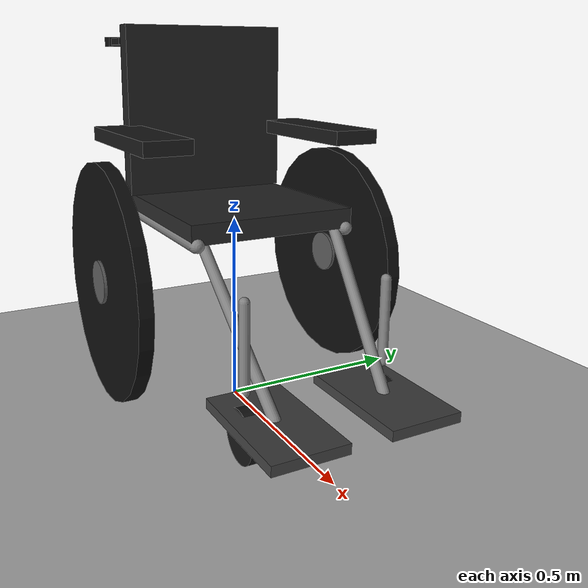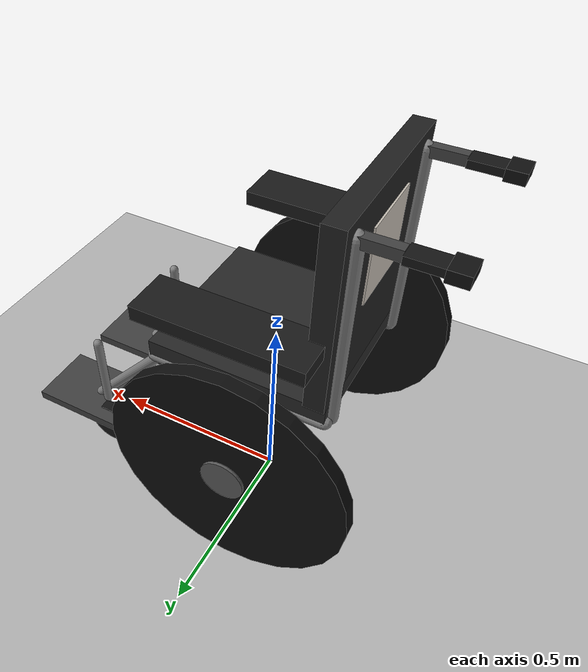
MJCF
<?xml version="1.0" encoding="UTF-8"?>
<mujoco model="average_manual_wheelchair">
  <compiler angle="degree" autolimits="true"/>
  <option timestep="0.002" gravity="0 0 -9.81" integrator="RK4"/>

  <default>
    <joint damping="0.5" armature="0.02"/>
    <geom density="300" friction="0.8 0.1 0.05" condim="3"/>
    <motor ctrllimited="true" ctrlrange="-1 1"/>
  </default>

  <asset>
    <texture name="wc_aruco_texture" type="2d" file="wheelchair_aruco_4x4_50_id0.png"/>
    <material name="wc_aruco_material" texture="wc_aruco_texture" emission="1" specular="0" shininess="0"/>
  </asset>

  <worldbody>
    <geom name="floor" type="plane" size="5 5 0.1" pos="0 0 0"
          rgba="0.7 0.7 0.7 1"/>

    <!-- Main frame / seat -->
    <body name="wheelchair" pos="0 0 0">
      <freejoint name="base_free"/>

      <!-- Seat cushion: 0.45 W x 0.43 D x 0.05 H -->
      <geom name="seat" type="box" size="0.225 0.215 0.025"
            pos="0 0 0.525" rgba="0.15 0.15 0.15 1"/>

      <!-- Seat/frame rails -->
      <geom name="left_seat_rail" type="capsule" fromto="-0.22 0.20 0.50 0.22 0.20 0.50"
            size="0.018"/>
      <geom name="right_seat_rail" type="capsule" fromto="-0.22 -0.20 0.50 0.22 -0.20 0.50"
            size="0.018"/>

      <!-- Backrest -->
      <geom name="backrest" type="box" size="0.025 0.225 0.225"
            pos="-0.20 0 0.775" rgba="0.12 0.12 0.12 1"/>

      <!-- DICT_4X4_50, ID 0; 18 cm square print with a white quiet zone.
           Its rear-facing surface is at x=-0.231. -->
      <geom name="rear_marker" type="box" size="0.002 0.09 0.09"
            pos="-0.229 0 0.84" material="wc_aruco_material"
            contype="0" conaffinity="0" mass="0.001"/>
      <site name="rear_marker_center" pos="-0.231 0 0.84" size="0.005" rgba="1 1 1 1"/>

      <!-- Flat rearward handles: a square neck plus a thin clamp plate.
           Jaws pinch the plate's top and bottom faces; capsules tunneled. -->
      <geom name="left_push_handle" type="box"
            pos="-0.270 0.18 0.96" size="0.045 0.012 0.012"
            rgba="0.25 0.25 0.25 1" friction="2.0 0.1 0.01" condim="3"/>
      <geom name="right_push_handle" type="box"
            pos="-0.270 -0.18 0.96" size="0.045 0.012 0.012"
            rgba="0.25 0.25 0.25 1" friction="2.0 0.1 0.01" condim="3"/>
      <geom name="left_handle_grip" type="box"
            pos="-0.355 0.18 0.96" size="0.040 0.022 0.009"
            rgba="0.08 0.08 0.08 1" friction="2.0 0.1 0.01" condim="3"/>
      <geom name="right_handle_grip" type="box"
            pos="-0.355 -0.18 0.96" size="0.040 0.022 0.009"
            rgba="0.08 0.08 0.08 1" friction="2.0 0.1 0.01" condim="3"/>
      <!-- Short flat stubs at the free ends: the jaws swallow these and close. -->
      <geom name="left_handle_tip" type="box"
            pos="-0.412 0.18 0.96" size="0.022 0.028 0.013"
            rgba="0.06 0.06 0.06 1" friction="2.2 0.12 0.02" condim="3"/>
      <geom name="right_handle_tip" type="box"
            pos="-0.412 -0.18 0.96" size="0.022 0.028 0.013"
            rgba="0.06 0.06 0.06 1" friction="2.2 0.12 0.02" condim="3"/>
      <site name="left_handle_grasp" pos="-0.412 0.18 0.96" size="0.008" rgba="1 0.4 0 1"/>
      <site name="right_handle_grasp" pos="-0.412 -0.18 0.96" size="0.008" rgba="1 0.4 0 1"/>

      <!-- Rear frame supports -->
      <geom name="left_rear_frame" type="capsule"
            fromto="-0.225 0.18 0.50 -0.225 0.18 0.96" size="0.018"/>
      <geom name="right_rear_frame" type="capsule"
            fromto="-0.225 -0.18 0.50 -0.225 -0.18 0.96" size="0.018"/>

      <!-- Footrests -->
      <geom name="left_footrest" type="box" size="0.15 0.09 0.012"
            pos="0.48 0.14 0.17" rgba="0.25 0.25 0.25 1"/>
      <geom name="right_footrest" type="box" size="0.15 0.09 0.012"
            pos="0.48 -0.14 0.17" rgba="0.25 0.25 0.25 1"/>

      <!-- Front leg/footrest supports -->
      <geom name="left_front_support" type="capsule"
            fromto="0.20 0.18 0.50 0.48 0.14 0.18" size="0.014"/>
      <geom name="right_front_support" type="capsule"
            fromto="0.20 -0.18 0.50 0.48 -0.14 0.18" size="0.014"/>

      <!-- LEFT MAIN WHEEL -->
      <body name="left_main_wheel" pos="-0.05 0.335 0.36">
        <joint name="left_wheel_joint" type="hinge"
               axis="0 1 0" damping="0.15"/>
        <geom name="left_main_wheel_geom" type="cylinder"
              size="0.305 0.018" euler="90 0 0"
              mass="2.0" friction="1.2 0.08 0.02"
              rgba="0.05 0.05 0.05 1"/>
        <geom name="left_wheel_hub" type="cylinder"
              size="0.055 0.025" euler="90 0 0"
              pos="0 0 0" mass="0.3" rgba="0.35 0.35 0.35 1"/>
      </body>

      <!-- RIGHT MAIN WHEEL -->
      <body name="right_main_wheel" pos="-0.05 -0.335 0.36">
        <joint name="right_wheel_joint" type="hinge"
               axis="0 1 0" damping="0.15"/>
        <geom name="right_main_wheel_geom" type="cylinder"
              size="0.305 0.018" euler="90 0 0"
              mass="2.0" friction="1.2 0.08 0.02"
              rgba="0.05 0.05 0.05 1"/>
        <geom name="right_wheel_hub" type="cylinder"
              size="0.055 0.025" euler="90 0 0"
              mass="0.3" rgba="0.35 0.35 0.35 1"/>
      </body>

      <!-- LEFT FRONT CASTER -->
      <body name="left_caster" pos="0.42 0.18 0.125">
        <joint name="left_caster_yaw" type="hinge"
               axis="0 0 1" damping="0.2"/>
        <geom name="left_caster_fork" type="capsule"
              fromto="0 0 0.10 0 0 0.30" size="0.012"/>
        <body name="left_caster_wheel" pos="0 0 0">
          <joint name="left_caster_wheel_joint" type="hinge"
                 axis="0 1 0" damping="0.05"/>
          <geom name="left_caster_wheel_geom" type="cylinder"
                size="0.0625 0.014" euler="90 0 0"
                mass="0.25" friction="1.0 0.05 0.02"
                rgba="0.08 0.08 0.08 1"/>
        </body>
      </body>

      <!-- RIGHT FRONT CASTER -->
      <body name="right_caster" pos="0.42 -0.18 0.125">
        <joint name="right_caster_yaw" type="hinge"
               axis="0 0 1" damping="0.2"/>
        <geom name="right_caster_fork" type="capsule"
              fromto="0 0 0.10 0 0 0.30" size="0.012"/>
        <body name="right_caster_wheel" pos="0 0 0">
          <joint name="right_caster_wheel_joint" type="hinge"
                 axis="0 1 0" damping="0.05"/>
          <geom name="right_caster_wheel_geom" type="cylinder"
                size="0.0625 0.014" euler="90 0 0"
                mass="0.25" friction="1.0 0.05 0.02"
                rgba="0.08 0.08 0.08 1"/>
        </body>
      </body>

      <!-- Armrests -->
      <geom name="left_armrest" type="box" size="0.20 0.06 0.018"
            pos="-0.01 0.25 0.72" rgba="0.10 0.10 0.10 1"/>
      <geom name="right_armrest" type="box" size="0.20 0.06 0.018"
            pos="-0.01 -0.25 0.72" rgba="0.10 0.10 0.10 1"/>
    </body>
  </worldbody>

  <actuator>
    <!-- Optional wheel actuators. Set ctrl to wheel torque in your controller.
         For initial passive viewing, simply do not send controls. -->
    <motor name="left_drive" joint="left_wheel_joint"
           gear="1" ctrllimited="false"/>
    <motor name="right_drive" joint="right_wheel_joint"
           gear="1" ctrllimited="false"/>
  </actuator>

  <sensor>
    <jointpos name="left_wheel_angle" joint="left_wheel_joint"/>
    <jointpos name="right_wheel_angle" joint="right_wheel_joint"/>
    <jointvel name="left_wheel_speed" joint="left_wheel_joint"/>
    <jointvel name="right_wheel_speed" joint="right_wheel_joint"/>
  </sensor>
</mujoco>
